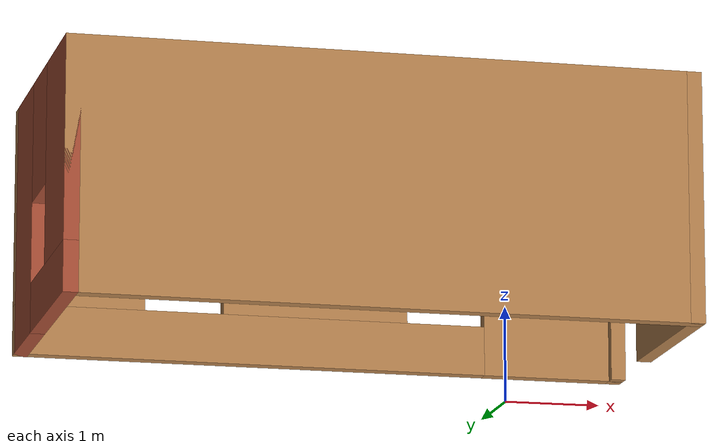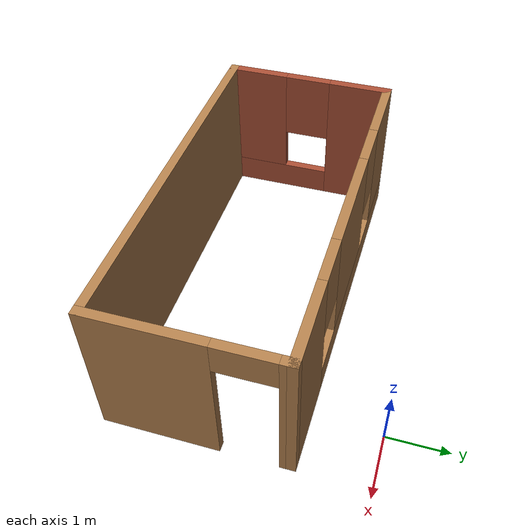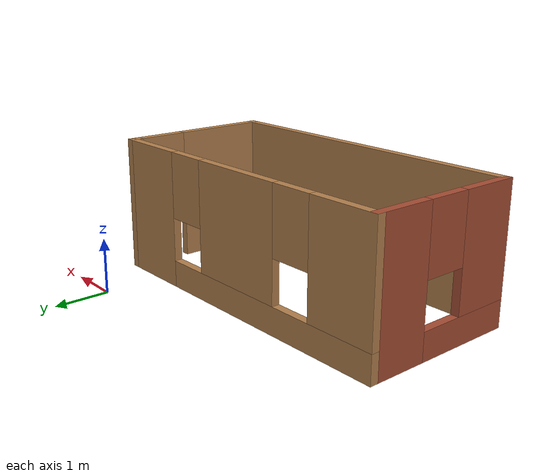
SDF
<?xml version='1.0'?>
<sdf version='1.7'>
  <model name='building'>
    <pose>-2.22 -2.0525 0 0 -0 0</pose>
    <link name='Wall_0'>
      <pose>0 0.8725 0 0 -0 3.14159</pose>
      <visual name='Wall_0_Visual_0'>
        <pose>-2.3975 0 1.25 0 -0 0</pose>
        <geometry>
          <box>
            <size>1.455 0.15 2.5</size>
          </box>
        </geometry>
        <material>
          <script>
            <uri>file://media/materials/scripts/gazebo.material</uri>
            <name>Gazebo/Wood</name>
          </script>
          <ambient>1 1 1 1</ambient>
        </material>
        <meta>
          <layer>0</layer>
        </meta>
      </visual>
      <collision name='Wall_0_Collision_0'>
        <geometry>
          <box>
            <size>1.455 0.15 2.5</size>
          </box>
        </geometry>
        <pose>-2.3975 0 1.25 0 -0 0</pose>
      </collision>
      <visual name='Wall_0_Visual_1'>
        <pose>0.7275 0 0.25 0 -0 0</pose>
        <geometry>
          <box>
            <size>4.795 0.15 0.5</size>
          </box>
        </geometry>
        <material>
          <script>
            <uri>file://media/materials/scripts/gazebo.material</uri>
            <name>Gazebo/Wood</name>
          </script>
          <ambient>1 1 1 1</ambient>
        </material>
        <meta>
          <layer>0</layer>
        </meta>
      </visual>
      <collision name='Wall_0_Collision_1'>
        <geometry>
          <box>
            <size>4.795 0.15 0.5</size>
          </box>
        </geometry>
        <pose>0.7275 0 0.25 0 -0 0</pose>
      </collision>
      <visual name='Wall_0_Visual_2'>
        <pose>0.075 0 1.5 0 -0 0</pose>
        <geometry>
          <box>
            <size>1.89 0.15 2</size>
          </box>
        </geometry>
        <material>
          <script>
            <uri>file://media/materials/scripts/gazebo.material</uri>
            <name>Gazebo/Wood</name>
          </script>
          <ambient>1 1 1 1</ambient>
        </material>
        <meta>
          <layer>0</layer>
        </meta>
      </visual>
      <collision name='Wall_0_Collision_2'>
        <geometry>
          <box>
            <size>1.89 0.15 2</size>
          </box>
        </geometry>
        <pose>0.075 0 1.5 0 -0 0</pose>
      </collision>
      <visual name='Wall_0_Visual_3'>
        <pose>2.4725 0 1.5 0 -0 0</pose>
        <geometry>
          <box>
            <size>1.305 0.15 2</size>
          </box>
        </geometry>
        <material>
          <script>
            <uri>file://media/materials/scripts/gazebo.material</uri>
            <name>Gazebo/Wood</name>
          </script>
          <ambient>1 1 1 1</ambient>
        </material>
        <meta>
          <layer>0</layer>
        </meta>
      </visual>
      <collision name='Wall_0_Collision_3'>
        <geometry>
          <box>
            <size>1.305 0.15 2</size>
          </box>
        </geometry>
        <pose>2.4725 0 1.5 0 -0 0</pose>
      </collision>
      <visual name='Wall_0_Visual_4'>
        <pose>-1.27 0 1.9 0 -0 0</pose>
        <geometry>
          <box>
            <size>0.8 0.15 1.2</size>
          </box>
        </geometry>
        <material>
          <script>
            <uri>file://media/materials/scripts/gazebo.material</uri>
            <name>Gazebo/Wood</name>
          </script>
          <ambient>1 1 1 1</ambient>
        </material>
        <meta>
          <layer>0</layer>
        </meta>
      </visual>
      <collision name='Wall_0_Collision_4'>
        <geometry>
          <box>
            <size>0.8 0.15 1.2</size>
          </box>
        </geometry>
        <pose>-1.27 0 1.9 0 -0 0</pose>
      </collision>
      <visual name='Wall_0_Visual_5'>
        <pose>1.42 0 1.9 0 -0 0</pose>
        <geometry>
          <box>
            <size>0.8 0.15 1.2</size>
          </box>
        </geometry>
        <material>
          <script>
            <uri>file://media/materials/scripts/gazebo.material</uri>
            <name>Gazebo/Wood</name>
          </script>
          <ambient>1 1 1 1</ambient>
        </material>
        <meta>
          <layer>0</layer>
        </meta>
      </visual>
      <collision name='Wall_0_Collision_5'>
        <geometry>
          <box>
            <size>0.8 0.15 1.2</size>
          </box>
        </geometry>
        <pose>1.42 0 1.9 0 -0 0</pose>
      </collision>
    </link>
    <link name='Wall_1'>
      <pose>-3.05 -0.5525 0 0 -0 -1.5708</pose>
      <visual name='Wall_1_Visual_0'>
        <pose>-0.9475 0 1.25 0 -0 0</pose>
        <geometry>
          <box>
            <size>1.105 0.15 2.5</size>
          </box>
        </geometry>
        <material>
          <script>
            <uri>file://media/materials/scripts/gazebo.material</uri>
            <name>Gazebo/Bricks</name>
          </script>
          <ambient>1 1 1 1</ambient>
        </material>
        <meta>
          <layer>0</layer>
        </meta>
      </visual>
      <collision name='Wall_1_Collision_0'>
        <geometry>
          <box>
            <size>1.105 0.15 2.5</size>
          </box>
        </geometry>
        <pose>-0.9475 0 1.25 0 -0 0</pose>
      </collision>
      <visual name='Wall_1_Visual_1'>
        <pose>0.5525 0 0.25 0 -0 0</pose>
        <geometry>
          <box>
            <size>1.895 0.15 0.5</size>
          </box>
        </geometry>
        <material>
          <script>
            <uri>file://media/materials/scripts/gazebo.material</uri>
            <name>Gazebo/Bricks</name>
          </script>
          <ambient>1 1 1 1</ambient>
        </material>
        <meta>
          <layer>0</layer>
        </meta>
      </visual>
      <collision name='Wall_1_Collision_1'>
        <geometry>
          <box>
            <size>1.895 0.15 0.5</size>
          </box>
        </geometry>
        <pose>0.5525 0 0.25 0 -0 0</pose>
      </collision>
      <visual name='Wall_1_Visual_2'>
        <pose>0.9525 0 1.5 0 -0 0</pose>
        <geometry>
          <box>
            <size>1.095 0.15 2</size>
          </box>
        </geometry>
        <material>
          <script>
            <uri>file://media/materials/scripts/gazebo.material</uri>
            <name>Gazebo/Bricks</name>
          </script>
          <ambient>1 1 1 1</ambient>
        </material>
        <meta>
          <layer>0</layer>
        </meta>
      </visual>
      <collision name='Wall_1_Collision_2'>
        <geometry>
          <box>
            <size>1.095 0.15 2</size>
          </box>
        </geometry>
        <pose>0.9525 0 1.5 0 -0 0</pose>
      </collision>
      <visual name='Wall_1_Visual_3'>
        <pose>0.005 0 1.9 0 -0 0</pose>
        <geometry>
          <box>
            <size>0.8 0.15 1.2</size>
          </box>
        </geometry>
        <material>
          <script>
            <uri>file://media/materials/scripts/gazebo.material</uri>
            <name>Gazebo/Bricks</name>
          </script>
          <ambient>1 1 1 1</ambient>
        </material>
        <meta>
          <layer>0</layer>
        </meta>
      </visual>
      <collision name='Wall_1_Collision_3'>
        <geometry>
          <box>
            <size>0.8 0.15 1.2</size>
          </box>
        </geometry>
        <pose>0.005 0 1.9 0 -0 0</pose>
      </collision>
    </link>
    <link name='Wall_2'>
      <collision name='Wall_2_Collision'>
        <geometry>
          <box>
            <size>6.25 0.15 2.5</size>
          </box>
        </geometry>
        <pose>0 0 1.25 0 -0 0</pose>
      </collision>
      <visual name='Wall_2_Visual'>
        <pose>0 0 1.25 0 -0 0</pose>
        <geometry>
          <box>
            <size>6.25 0.15 2.5</size>
          </box>
        </geometry>
        <material>
          <script>
            <uri>file://media/materials/scripts/gazebo.material</uri>
            <name>Gazebo/Wood</name>
          </script>
          <ambient>1 1 1 1</ambient>
        </material>
        <meta>
          <layer>0</layer>
        </meta>
      </visual>
      <pose>0 -1.9775 0 0 -0 0</pose>
    </link>
    <link name='Wall_3'>
      <pose>3.05 -0.5525 0 0 -0 1.5708</pose>
      <visual name='Wall_3_Visual_0'>
        <pose>-0.5725 0 1.25 0 -0 0</pose>
        <geometry>
          <box>
            <size>1.855 0.15 2.5</size>
          </box>
        </geometry>
        <material>
          <script>
            <uri>file://media/materials/scripts/gazebo.material</uri>
            <name>Gazebo/Wood</name>
          </script>
          <ambient>1 1 1 1</ambient>
        </material>
        <meta>
          <layer>0</layer>
        </meta>
      </visual>
      <collision name='Wall_3_Collision_0'>
        <geometry>
          <box>
            <size>1.855 0.15 2.5</size>
          </box>
        </geometry>
        <pose>-0.5725 0 1.25 0 -0 0</pose>
      </collision>
      <visual name='Wall_3_Visual_1'>
        <pose>1.3775 0 1.25 0 -0 0</pose>
        <geometry>
          <box>
            <size>0.245 0.15 2.5</size>
          </box>
        </geometry>
        <material>
          <script>
            <uri>file://media/materials/scripts/gazebo.material</uri>
            <name>Gazebo/Wood</name>
          </script>
          <ambient>1 1 1 1</ambient>
        </material>
        <meta>
          <layer>0</layer>
        </meta>
      </visual>
      <collision name='Wall_3_Collision_1'>
        <geometry>
          <box>
            <size>0.245 0.15 2.5</size>
          </box>
        </geometry>
        <pose>1.3775 0 1.25 0 -0 0</pose>
      </collision>
      <visual name='Wall_3_Visual_2'>
        <pose>0.805 0 2.25 0 -0 0</pose>
        <geometry>
          <box>
            <size>0.9 0.15 0.5</size>
          </box>
        </geometry>
        <material>
          <script>
            <uri>file://media/materials/scripts/gazebo.material</uri>
            <name>Gazebo/Wood</name>
          </script>
          <ambient>1 1 1 1</ambient>
        </material>
        <meta>
          <layer>0</layer>
        </meta>
      </visual>
      <collision name='Wall_3_Collision_2'>
        <geometry>
          <box>
            <size>0.9 0.15 0.5</size>
          </box>
        </geometry>
        <pose>0.805 0 2.25 0 -0 0</pose>
      </collision>
    </link>
    <static>1</static>
  </model>
</sdf>
